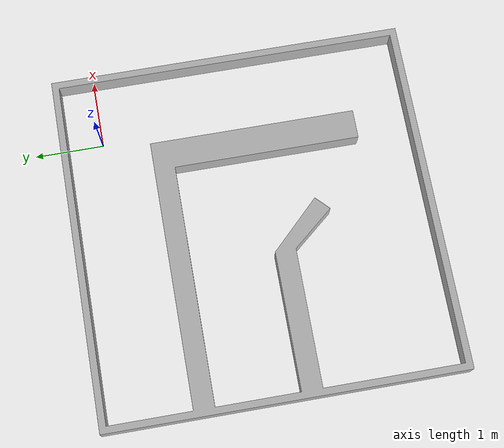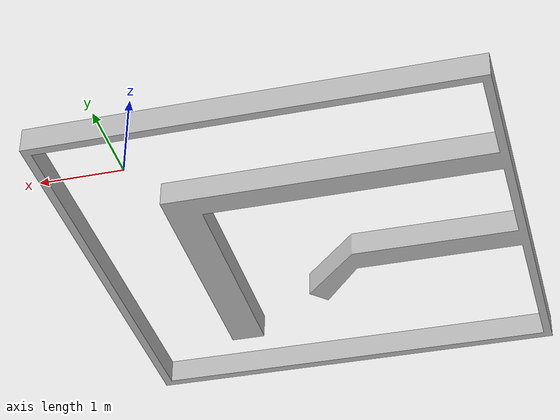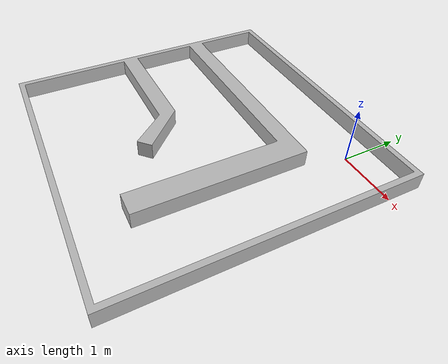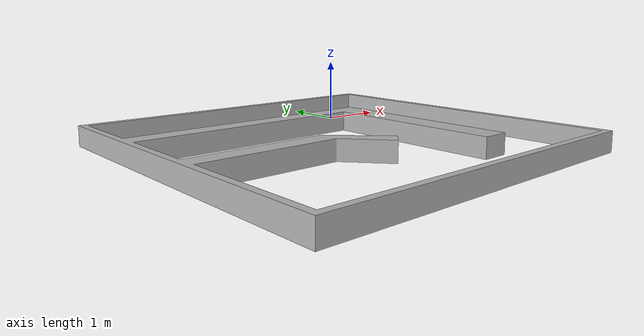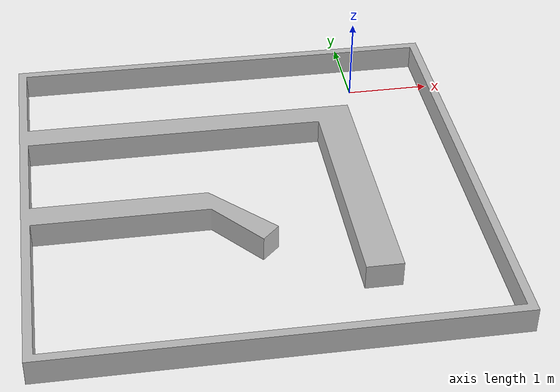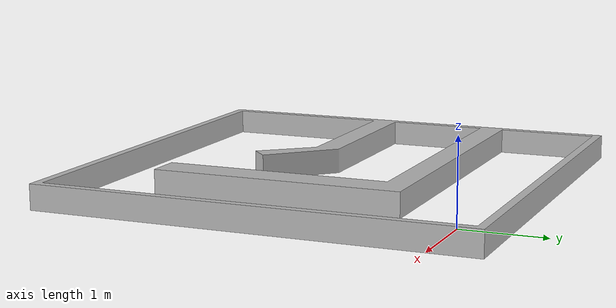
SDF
<?xml version='1.0'?>
<sdf version="1.4">
  <model name="agrobot_stage_3">
    <pose>0 0 0.0 0 0 0</pose>
    <static>true</static>
    <link name="link">
      <inertial>
        <mass>1.0</mass>
        <inertia> <!-- inertias are tricky to compute -->
          <!-- http://gazebosim.org/tutorials?tut=inertia&cat=build_robot -->
          <ixx>0.083</ixx>       <!-- for a box: ixx = 0.083 * mass * (y*y + z*z) -->
          <ixy>0.0</ixy>         <!-- for a box: ixy = 0 -->
          <ixz>0.0</ixz>         <!-- for a box: ixz = 0 -->
          <iyy>0.083</iyy>       <!-- for a box: iyy = 0.083 * mass * (x*x + z*z) -->
          <iyz>0.0</iyz>         <!-- for a box: iyz = 0 -->
          <izz>0.083</izz>       <!-- for a box: izz = 0.083 * mass * (x*x + y*y) -->
        </inertia>
      </inertial>
      <collision name="collision">
        <geometry>
          <mesh>
            <uri>model://agrobot_stage_3/meshes/agrobot_stage_3.stl</uri>
	    <scale>0.02 0.02 0.02</scale>
          </mesh>
        </geometry>
      </collision>
      <visual name="visual">
        <geometry>
          <mesh>
            <uri>model://agrobot_stage_3/meshes/agrobot_stage_3.stl</uri>
	    <scale>0.02 0.02 0.02</scale>
          </mesh>
        </geometry>
      </visual>
    </link>
  </model>
</sdf>
